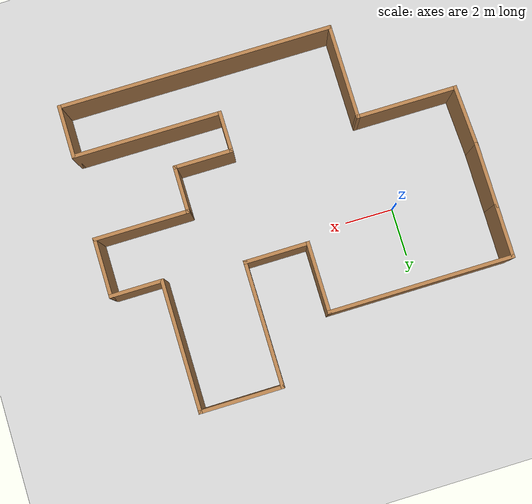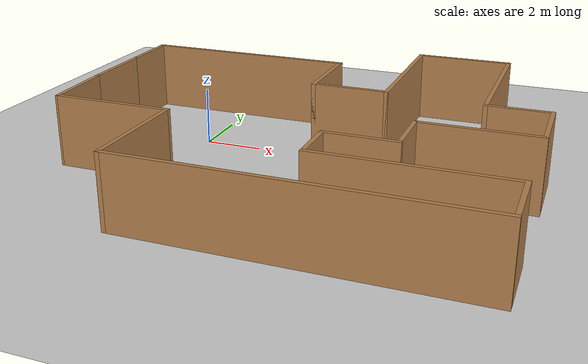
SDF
<sdf version="1.7">
 <world name="default">
  <light name="sun" type="directional">
   <pose>0 0 10 0 -0 0</pose>
   <diffuse>0.8 0.8 0.8 1</diffuse>
   <specular>0.2 0.2 0.2 1</specular>
   <attenuation>
    <range>1000</range>
    <constant>0.9</constant>
    <linear>0.01</linear>
    <quadratic>0.001</quadratic>
   </attenuation>
   <direction>-0.5 0.1 -0.9</direction>
   <spot><inner_angle>0</inner_angle><outer_angle>0</outer_angle><falloff>0</falloff></spot>
  </light>
  <model name="ground_plane">
   <static>1</static>
   <link name="link">
    <collision name="collision">
     <geometry><plane><normal>0 0 1</normal><size>100 100</size></plane></geometry>
     <surface>
      <contact><collide_bitmask>65535</collide_bitmask></contact>
      <friction><ode><mu>100</mu><mu2>50</mu2></ode></friction>
     </surface>
    </collision>
    <visual name="visual">
     <cast_shadows>0</cast_shadows>
     <geometry><plane><normal>0 0 1</normal><size>100 100</size></plane></geometry>
     <material>
      <script><uri>file://media/materials/scripts/gazebo.material</uri><name>Gazebo/Grey</name></script>
     </material>
    </visual>
   </link>
  </model>
  <gravity>0 0 -9.8</gravity>
  <magnetic_field>6e-06 2.3e-05 -4.2e-05</magnetic_field>
  <atmosphere type="adiabatic"/>
  <physics type="ode">
   <max_step_size>0.001</max_step_size>
   <real_time_factor>1</real_time_factor>
   <real_time_update_rate>1000</real_time_update_rate>
  </physics>
  <scene><ambient>0.4 0.4 0.4 1</ambient><background>0.7 0.7 0.7 1</background><shadows>1</shadows></scene>
  <spherical_coordinates>
   <surface_model>EARTH_WGS84</surface_model>
   <latitude_deg>0</latitude_deg>
   <longitude_deg>0</longitude_deg>
   <elevation>0</elevation>
   <heading_deg>0</heading_deg>
  </spherical_coordinates>
  <model name="gaitron_world">
   <pose>4.10345 -0.965869 0 0 -0 0</pose>
   <link name="Wall_0">
    <collision name="Wall_0_Collision">
     <geometry><box><size>2.75 0.15 2.5</size></box></geometry>
     <pose>0 0 1.25 0 -0 0</pose>
    </collision>
    <visual name="Wall_0_Visual">
     <pose>0 0 1.25 0 -0 0</pose>
     <geometry><box><size>2.75 0.15 2.5</size></box></geometry>
     <material>
      <script><uri>file://media/materials/scripts/gazebo.material</uri><name>Gazebo/Wood</name></script>
      <ambient>1 1 1 1</ambient>
     </material>
     <meta><layer>0</layer></meta>
    </visual>
    <pose>-7.8235 0.975 0 0 -0 1.5708</pose>
   </link>
   <link name="Wall_1">
    <collision name="Wall_1_Collision">
     <geometry><box><size>2.25 0.15 2.5</size></box></geometry>
     <pose>0 0 1.25 0 -0 0</pose>
    </collision>
    <visual name="Wall_1_Visual">
     <pose>0 0 1.25 0 -0 0</pose>
     <geometry><box><size>2.25 0.15 2.5</size></box></geometry>
     <material>
      <script><uri>file://media/materials/scripts/gazebo.material</uri><name>Gazebo/Wood</name></script>
      <ambient>1 1 1 1</ambient>
     </material>
     <meta><layer>0</layer></meta>
    </visual>
    <pose>-7.8235 3.325 0 0 -0 1.5708</pose>
   </link>
   <link name="Wall_10">
    <collision name="Wall_10_Collision">
     <geometry><box><size>4 0.15 2.5</size></box></geometry>
     <pose>0 0 1.25 0 -0 0</pose>
    </collision>
    <visual name="Wall_10_Visual">
     <pose>0 0 1.25 0 -0 0</pose>
     <geometry><box><size>4 0.15 2.5</size></box></geometry>
     <material>
      <script><uri>file://media/materials/scripts/gazebo.material</uri><name>Gazebo/Wood</name></script>
      <ambient>1 1 1 1</ambient>
     </material>
     <meta><layer>0</layer></meta>
    </visual>
    <pose>5.9015 -1.075 0 0 -0 3.14159</pose>
   </link>
   <link name="Wall_11">
    <collision name="Wall_11_Collision">
     <geometry><box><size>2 0.15 2.5</size></box></geometry>
     <pose>0 0 1.25 0 -0 0</pose>
    </collision>
    <visual name="Wall_11_Visual">
     <pose>0 0 1.25 0 -0 0</pose>
     <geometry><box><size>2 0.15 2.5</size></box></geometry>
     <material>
      <script><uri>file://media/materials/scripts/gazebo.material</uri><name>Gazebo/Wood</name></script>
      <ambient>1 1 1 1</ambient>
     </material>
     <meta><layer>0</layer></meta>
    </visual>
    <pose>3.9765 -2 0 0 -0 -1.5708</pose>
   </link>
   <link name="Wall_12">
    <collision name="Wall_12_Collision">
     <geometry><box><size>2.5 0.15 2.5</size></box></geometry>
     <pose>0 0 1.25 0 -0 0</pose>
    </collision>
    <visual name="Wall_12_Visual">
     <pose>0 0 1.25 0 -0 0</pose>
     <geometry><box><size>2.5 0.15 2.5</size></box></geometry>
     <material>
      <script><uri>file://media/materials/scripts/gazebo.material</uri><name>Gazebo/Wood</name></script>
      <ambient>1 1 1 1</ambient>
     </material>
     <meta><layer>0</layer></meta>
    </visual>
    <pose>2.8015 -2.925 0 0 -0 3.14159</pose>
   </link>
   <link name="Wall_13">
    <collision name="Wall_13_Collision">
     <geometry><box><size>1.75 0.15 2.5</size></box></geometry>
     <pose>0 0 1.25 0 -0 0</pose>
    </collision>
    <visual name="Wall_13_Visual">
     <pose>0 0 1.25 0 -0 0</pose>
     <geometry><box><size>1.75 0.15 2.5</size></box></geometry>
     <material>
      <script><uri>file://media/materials/scripts/gazebo.material</uri><name>Gazebo/Wood</name></script>
      <ambient>1 1 1 1</ambient>
     </material>
     <meta><layer>0</layer></meta>
    </visual>
    <pose>1.6265 -3.725 0 0 -0 -1.5708</pose>
   </link>
   <link name="Wall_14">
    <collision name="Wall_14_Collision">
     <geometry><box><size>6.25 0.15 2.5</size></box></geometry>
     <pose>0 0 1.25 0 -0 0</pose>
    </collision>
    <visual name="Wall_14_Visual">
     <pose>0 0 1.25 0 -0 0</pose>
     <geometry><box><size>6.25 0.15 2.5</size></box></geometry>
     <material>
      <script><uri>file://media/materials/scripts/gazebo.material</uri><name>Gazebo/Wood</name></script>
      <ambient>1 1 1 1</ambient>
     </material>
     <meta><layer>0</layer></meta>
    </visual>
    <pose>4.6765 -4.525 0 0 -0 0</pose>
   </link>
   <link name="Wall_15">
    <collision name="Wall_15_Collision">
     <geometry><box><size>2.25 0.15 2.5</size></box></geometry>
     <pose>0 0 1.25 0 -0 0</pose>
    </collision>
    <visual name="Wall_15_Visual">
     <pose>0 0 1.25 0 -0 0</pose>
     <geometry><box><size>2.25 0.15 2.5</size></box></geometry>
     <material>
      <script><uri>file://media/materials/scripts/gazebo.material</uri><name>Gazebo/Wood</name></script>
      <ambient>1 1 1 1</ambient>
     </material>
     <meta><layer>0</layer></meta>
    </visual>
    <pose>7.7265 -5.575 0 0 -0 -1.5708</pose>
   </link>
   <link name="Wall_18">
    <collision name="Wall_18_Collision">
     <geometry><box><size>11.5 0.15 2.5</size></box></geometry>
     <pose>0 0 1.25 0 -0 0</pose>
    </collision>
    <visual name="Wall_18_Visual">
     <pose>0 0 1.25 0 -0 0</pose>
     <geometry><box><size>11.5 0.15 2.5</size></box></geometry>
     <material>
      <script><uri>file://media/materials/scripts/gazebo.material</uri><name>Gazebo/Wood</name></script>
      <ambient>1 1 1 1</ambient>
     </material>
     <meta><layer>0</layer></meta>
    </visual>
    <pose>2.0515 -6.625 0 0 -0 3.14159</pose>
   </link>
   <link name="Wall_19">
    <collision name="Wall_19_Collision">
     <geometry><box><size>4 0.15 2.5</size></box></geometry>
     <pose>0 0 1.25 0 -0 0</pose>
    </collision>
    <visual name="Wall_19_Visual">
     <pose>0 0 1.25 0 -0 0</pose>
     <geometry><box><size>4 0.15 2.5</size></box></geometry>
     <material>
      <script><uri>file://media/materials/scripts/gazebo.material</uri><name>Gazebo/Wood</name></script>
      <ambient>1 1 1 1</ambient>
     </material>
     <meta><layer>0</layer></meta>
    </visual>
    <pose>-3.6235 -4.7 0 0 -0 1.5708</pose>
   </link>
   <link name="Wall_2">
    <collision name="Wall_2_Collision">
     <geometry><box><size>7.75 0.15 2.5</size></box></geometry>
     <pose>0 0 1.25 0 -0 0</pose>
    </collision>
    <visual name="Wall_2_Visual">
     <pose>0 0 1.25 0 -0 0</pose>
     <geometry><box><size>7.75 0.15 2.5</size></box></geometry>
     <material>
      <script><uri>file://media/materials/scripts/gazebo.material</uri><name>Gazebo/Wood</name></script>
      <ambient>1 1 1 1</ambient>
     </material>
     <meta><layer>0</layer></meta>
    </visual>
    <pose>-4.0235 4.375 0 0 -0 0</pose>
   </link>
   <link name="Wall_20">
    <collision name="Wall_20_Collision">
     <geometry><box><size>4.25 0.15 2.5</size></box></geometry>
     <pose>0 0 1.25 0 -0 0</pose>
    </collision>
    <visual name="Wall_20_Visual">
     <pose>0 0 1.25 0 -0 0</pose>
     <geometry><box><size>4.25 0.15 2.5</size></box></geometry>
     <material>
      <script><uri>file://media/materials/scripts/gazebo.material</uri><name>Gazebo/Wood</name></script>
      <ambient>1 1 1 1</ambient>
     </material>
     <meta><layer>0</layer></meta>
    </visual>
    <pose>-5.6735 -2.775 0 0 -0 3.14159</pose>
   </link>
   <link name="Wall_21">
    <collision name="Wall_21_Collision">
     <geometry><box><size>2.60204 0.15 2.5</size></box></geometry>
     <pose>0 0 1.25 0 -0 0</pose>
    </collision>
    <visual name="Wall_21_Visual">
     <pose>0 0 1.25 0 -0 0</pose>
     <geometry><box><size>2.60204 0.15 2.5</size></box></geometry>
     <material>
      <script><uri>file://media/materials/scripts/gazebo.material</uri><name>Gazebo/Wood</name></script>
      <ambient>1 1 1 1</ambient>
     </material>
     <meta><layer>0</layer></meta>
    </visual>
    <pose>-7.7735 -1.55 0 0 -0 1.61159</pose>
   </link>
   <link name="Wall_3">
    <collision name="Wall_3_Collision">
     <geometry><box><size>3 0.15 2.5</size></box></geometry>
     <pose>0 0 1.25 0 -0 0</pose>
    </collision>
    <visual name="Wall_3_Visual">
     <pose>0 0 1.25 0 -0 0</pose>
     <geometry><box><size>3 0.15 2.5</size></box></geometry>
     <material>
      <script><uri>file://media/materials/scripts/gazebo.material</uri><name>Gazebo/Wood</name></script>
      <ambient>1 1 1 1</ambient>
     </material>
     <meta><layer>0</layer></meta>
    </visual>
    <pose>-0.223502 2.95 0 0 -0 -1.5708</pose>
   </link>
   <link name="Wall_4">
    <collision name="Wall_4_Collision">
     <geometry><box><size>2.75 0.15 2.5</size></box></geometry>
     <pose>0 0 1.25 0 -0 0</pose>
    </collision>
    <visual name="Wall_4_Visual">
     <pose>0 0 1.25 0 -0 0</pose>
     <geometry><box><size>2.75 0.15 2.5</size></box></geometry>
     <material>
      <script><uri>file://media/materials/scripts/gazebo.material</uri><name>Gazebo/Wood</name></script>
      <ambient>1 1 1 1</ambient>
     </material>
     <meta><layer>0</layer></meta>
    </visual>
    <pose>1.0765 1.525 0 0 -0 0</pose>
   </link>
   <link name="Wall_5">
    <collision name="Wall_5_Collision">
     <geometry><box><size>5.25 0.15 2.5</size></box></geometry>
     <pose>0 0 1.25 0 -0 0</pose>
    </collision>
    <visual name="Wall_5_Visual">
     <pose>0 0 1.25 0 -0 0</pose>
     <geometry><box><size>5.25 0.15 2.5</size></box></geometry>
     <material>
      <script><uri>file://media/materials/scripts/gazebo.material</uri><name>Gazebo/Wood</name></script>
      <ambient>1 1 1 1</ambient>
     </material>
     <meta><layer>0</layer></meta>
    </visual>
    <pose>2.3765 4.075 0 0 -0 1.5708</pose>
   </link>
   <link name="Wall_6">
    <collision name="Wall_6_Collision">
     <geometry><box><size>3.5 0.15 2.5</size></box></geometry>
     <pose>0 0 1.25 0 -0 0</pose>
    </collision>
    <visual name="Wall_6_Visual">
     <pose>0 0 1.25 0 -0 0</pose>
     <geometry><box><size>3.5 0.15 2.5</size></box></geometry>
     <material>
      <script><uri>file://media/materials/scripts/gazebo.material</uri><name>Gazebo/Wood</name></script>
      <ambient>1 1 1 1</ambient>
     </material>
     <meta><layer>0</layer></meta>
    </visual>
    <pose>4.0515 6.625 0 0 -0 0</pose>
   </link>
   <link name="Wall_7">
    <collision name="Wall_7_Collision">
     <geometry><box><size>5.5 0.15 2.5</size></box></geometry>
     <pose>0 0 1.25 0 -0 0</pose>
    </collision>
    <visual name="Wall_7_Visual">
     <pose>0 0 1.25 0 -0 0</pose>
     <geometry><box><size>5.5 0.15 2.5</size></box></geometry>
     <material>
      <script><uri>file://media/materials/scripts/gazebo.material</uri><name>Gazebo/Wood</name></script>
      <ambient>1 1 1 1</ambient>
     </material>
     <meta><layer>0</layer></meta>
    </visual>
    <pose>5.7265 3.95 0 0 -0 -1.5708</pose>
   </link>
   <link name="Wall_8">
    <collision name="Wall_8_Collision">
     <geometry><box><size>2.25 0.15 2.5</size></box></geometry>
     <pose>0 0 1.25 0 -0 0</pose>
    </collision>
    <visual name="Wall_8_Visual">
     <pose>0 0 1.25 0 -0 0</pose>
     <geometry><box><size>2.25 0.15 2.5</size></box></geometry>
     <material>
      <script><uri>file://media/materials/scripts/gazebo.material</uri><name>Gazebo/Wood</name></script>
      <ambient>1 1 1 1</ambient>
     </material>
     <meta><layer>0</layer></meta>
    </visual>
    <pose>6.7765 1.275 0 0 -0 0</pose>
   </link>
   <link name="Wall_9">
    <collision name="Wall_9_Collision">
     <geometry><box><size>2.5 0.15 2.5</size></box></geometry>
     <pose>0 0 1.25 0 -0 0</pose>
    </collision>
    <visual name="Wall_9_Visual">
     <pose>0 0 1.25 0 -0 0</pose>
     <geometry><box><size>2.5 0.15 2.5</size></box></geometry>
     <material>
      <script><uri>file://media/materials/scripts/gazebo.material</uri><name>Gazebo/Wood</name></script>
      <ambient>1 1 1 1</ambient>
     </material>
     <meta><layer>0</layer></meta>
    </visual>
    <pose>7.8265 0.1 0 0 -0 -1.5708</pose>
   </link>
   <static>1</static>
  </model>
 </world>
</sdf>
